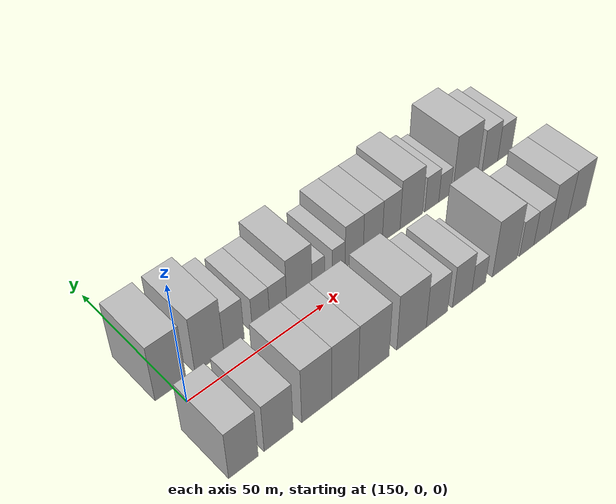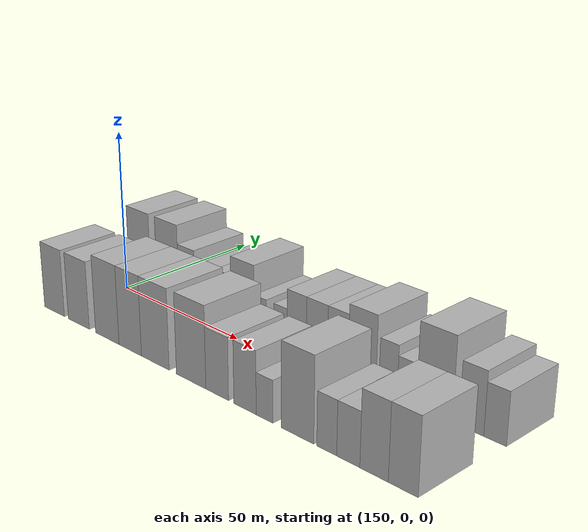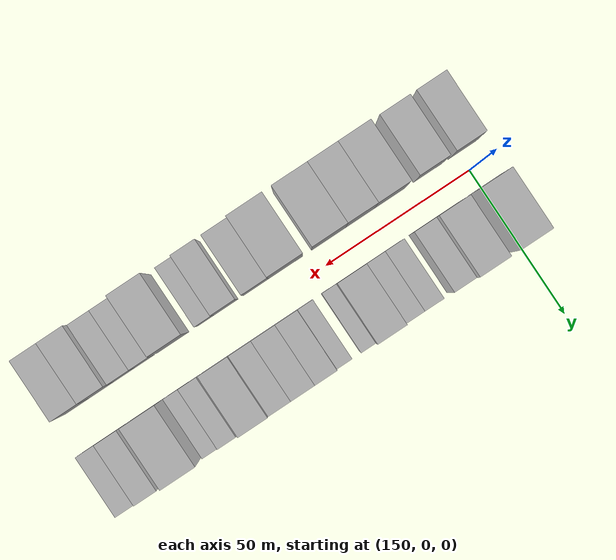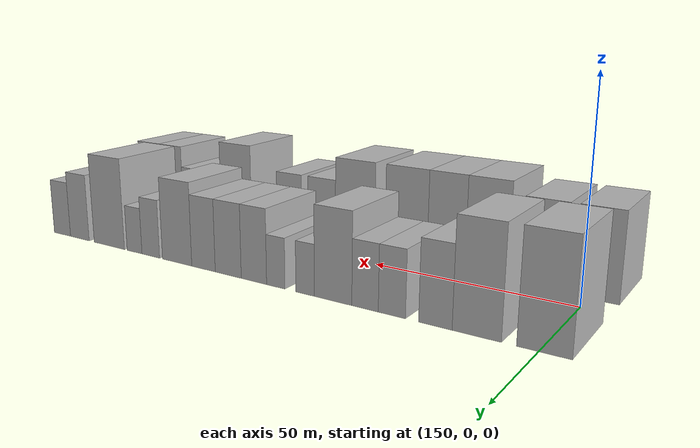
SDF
<sdf version="1.6">
 <world name="default">
  <model name="building_15">
   <static>1</static>
   <pose>149.0754 16.0000 0 0.000000 0.000000 1.570796</pose>
   <link name="link">
    <pose>0 0 12.00 0 0 0</pose>
    <collision name="collision"><geometry><box><size>20.0000 10.6516 24.0000</size></box></geometry></collision>
    <visual name="visual">
     <cast_shadows>0</cast_shadows>
     <geometry><box><size>20.0000 10.6516 24.0000</size></box></geometry>
     <material>
      <script>
       <uri>model://HANNAS_wall/materials/scripts</uri>
       <uri>model://HANNAS_wall/materials/textures</uri>
       <name>vrc/HANNAS_wall</name>
      </script>
     </material>
    </visual>
   </link>
  </model>
  <model name="building_16">
   <static>1</static>
   <pose>162.5421 16.0000 0 0.000000 0.000000 1.570796</pose>
   <link name="link">
    <pose>0 0 12.00 0 0 0</pose>
    <collision name="collision"><geometry><box><size>20.0000 10.2817 24.0000</size></box></geometry></collision>
    <visual name="visual">
     <cast_shadows>0</cast_shadows>
     <geometry><box><size>20.0000 10.2817 24.0000</size></box></geometry>
     <material>
      <script>
       <uri>model://HANNAS_wall/materials/scripts</uri>
       <uri>model://HANNAS_wall/materials/textures</uri>
       <name>vrc/HANNAS_wall</name>
      </script>
     </material>
    </visual>
   </link>
  </model>
  <model name="building_17">
   <static>1</static>
   <pose>171.3868 16.0000 0 0.000000 0.000000 1.570796</pose>
   <link name="link">
    <pose>0 0 9.00 0 0 0</pose>
    <collision name="collision"><geometry><box><size>20.0000 7.4078 18.0000</size></box></geometry></collision>
    <visual name="visual">
     <cast_shadows>0</cast_shadows>
     <geometry><box><size>20.0000 7.4078 18.0000</size></box></geometry>
     <material>
      <script>
       <uri>model://HANNAS_wall/materials/scripts</uri>
       <uri>model://HANNAS_wall/materials/textures</uri>
       <name>vrc/HANNAS_wall</name>
      </script>
     </material>
    </visual>
   </link>
  </model>
  <model name="building_18">
   <static>1</static>
   <pose>181.2997 16.0000 0 0.000000 0.000000 1.570796</pose>
   <link name="link">
    <pose>0 0 7.50 0 0 0</pose>
    <collision name="collision"><geometry><box><size>20.0000 6.4180 15.0000</size></box></geometry></collision>
    <visual name="visual">
     <cast_shadows>0</cast_shadows>
     <geometry><box><size>20.0000 6.4180 15.0000</size></box></geometry>
     <material>
      <script>
       <uri>model://HANNAS_wall/materials/scripts</uri>
       <uri>model://HANNAS_wall/materials/textures</uri>
       <name>vrc/HANNAS_wall</name>
      </script>
     </material>
    </visual>
   </link>
  </model>
  <model name="building_19">
   <static>1</static>
   <pose>187.7610 16.0000 0 0.000000 0.000000 1.570796</pose>
   <link name="link">
    <pose>0 0 7.50 0 0 0</pose>
    <collision name="collision"><geometry><box><size>20.0000 6.5044 15.0000</size></box></geometry></collision>
    <visual name="visual">
     <cast_shadows>0</cast_shadows>
     <geometry><box><size>20.0000 6.5044 15.0000</size></box></geometry>
     <material>
      <script>
       <uri>model://HANNAS_wall/materials/scripts</uri>
       <uri>model://HANNAS_wall/materials/textures</uri>
       <name>vrc/HANNAS_wall</name>
      </script>
     </material>
    </visual>
   </link>
  </model>
  <model name="building_20">
   <static>1</static>
   <pose>195.8750 16.0000 0 0.000000 0.000000 1.570796</pose>
   <link name="link">
    <pose>0 0 10.50 0 0 0</pose>
    <collision name="collision"><geometry><box><size>20.0000 9.7236 21.0000</size></box></geometry></collision>
    <visual name="visual">
     <cast_shadows>0</cast_shadows>
     <geometry><box><size>20.0000 9.7236 21.0000</size></box></geometry>
     <material>
      <script>
       <uri>model://HANNAS_wall/materials/scripts</uri>
       <uri>model://HANNAS_wall/materials/textures</uri>
       <name>vrc/HANNAS_wall</name>
      </script>
     </material>
    </visual>
   </link>
  </model>
  <model name="building_21">
   <static>1</static>
   <pose>203.2164 16.0000 0 0.000000 0.000000 1.570796</pose>
   <link name="link">
    <pose>0 0 6.00 0 0 0</pose>
    <collision name="collision"><geometry><box><size>20.0000 4.9591 12.0000</size></box></geometry></collision>
    <visual name="visual">
     <cast_shadows>0</cast_shadows>
     <geometry><box><size>20.0000 4.9591 12.0000</size></box></geometry>
     <material>
      <script>
       <uri>model://HANNAS_wall/materials/scripts</uri>
       <uri>model://HANNAS_wall/materials/textures</uri>
       <name>vrc/HANNAS_wall</name>
      </script>
     </material>
    </visual>
   </link>
  </model>
  <model name="building_22">
   <static>1</static>
   <pose>211.2967 16.0000 0 0.000000 0.000000 1.570796</pose>
   <link name="link">
    <pose>0 0 6.00 0 0 0</pose>
    <collision name="collision"><geometry><box><size>20.0000 5.2015 12.0000</size></box></geometry></collision>
    <visual name="visual">
     <cast_shadows>0</cast_shadows>
     <geometry><box><size>20.0000 5.2015 12.0000</size></box></geometry>
     <material>
      <script>
       <uri>model://HANNAS_wall/materials/scripts</uri>
       <uri>model://HANNAS_wall/materials/textures</uri>
       <name>vrc/HANNAS_wall</name>
      </script>
     </material>
    </visual>
   </link>
  </model>
  <model name="building_23">
   <static>1</static>
   <pose>217.6205 16.0000 0 0.000000 0.000000 1.570796</pose>
   <link name="link">
    <pose>0 0 9.00 0 0 0</pose>
    <collision name="collision"><geometry><box><size>20.0000 7.4462 18.0000</size></box></geometry></collision>
    <visual name="visual">
     <cast_shadows>0</cast_shadows>
     <geometry><box><size>20.0000 7.4462 18.0000</size></box></geometry>
     <material>
      <script>
       <uri>model://HANNAS_wall/materials/scripts</uri>
       <uri>model://HANNAS_wall/materials/textures</uri>
       <name>vrc/HANNAS_wall</name>
      </script>
     </material>
    </visual>
   </link>
  </model>
  <model name="building_24">
   <static>1</static>
   <pose>225.3362 16.0000 0 0.000000 0.000000 1.570796</pose>
   <link name="link">
    <pose>0 0 9.00 0 0 0</pose>
    <collision name="collision"><geometry><box><size>20.0000 7.9854 18.0000</size></box></geometry></collision>
    <visual name="visual">
     <cast_shadows>0</cast_shadows>
     <geometry><box><size>20.0000 7.9854 18.0000</size></box></geometry>
     <material>
      <script>
       <uri>model://HANNAS_wall/materials/scripts</uri>
       <uri>model://HANNAS_wall/materials/textures</uri>
       <name>vrc/HANNAS_wall</name>
      </script>
     </material>
    </visual>
   </link>
  </model>
  <model name="building_25">
   <static>1</static>
   <pose>233.0954 16.0000 0 0.000000 0.000000 1.570796</pose>
   <link name="link">
    <pose>0 0 9.00 0 0 0</pose>
    <collision name="collision"><geometry><box><size>20.0000 7.5330 18.0000</size></box></geometry></collision>
    <visual name="visual">
     <cast_shadows>0</cast_shadows>
     <geometry><box><size>20.0000 7.5330 18.0000</size></box></geometry>
     <material>
      <script>
       <uri>model://HANNAS_wall/materials/scripts</uri>
       <uri>model://HANNAS_wall/materials/textures</uri>
       <name>vrc/HANNAS_wall</name>
      </script>
     </material>
    </visual>
   </link>
  </model>
  <model name="building_26">
   <static>1</static>
   <pose>241.7802 16.0000 0 0.000000 0.000000 1.570796</pose>
   <link name="link">
    <pose>0 0 10.50 0 0 0</pose>
    <collision name="collision"><geometry><box><size>20.0000 9.8365 21.0000</size></box></geometry></collision>
    <visual name="visual">
     <cast_shadows>0</cast_shadows>
     <geometry><box><size>20.0000 9.8365 21.0000</size></box></geometry>
     <material>
      <script>
       <uri>model://HANNAS_wall/materials/scripts</uri>
       <uri>model://HANNAS_wall/materials/textures</uri>
       <name>vrc/HANNAS_wall</name>
      </script>
     </material>
    </visual>
   </link>
  </model>
  <model name="building_27">
   <static>1</static>
   <pose>250.8081 16.0000 0 0.000000 0.000000 1.570796</pose>
   <link name="link">
    <pose>0 0 7.50 0 0 0</pose>
    <collision name="collision"><geometry><box><size>20.0000 6.2193 15.0000</size></box></geometry></collision>
    <visual name="visual">
     <cast_shadows>0</cast_shadows>
     <geometry><box><size>20.0000 6.2193 15.0000</size></box></geometry>
     <material>
      <script>
       <uri>model://HANNAS_wall/materials/scripts</uri>
       <uri>model://HANNAS_wall/materials/textures</uri>
       <name>vrc/HANNAS_wall</name>
      </script>
     </material>
    </visual>
   </link>
  </model>
  <model name="building_28">
   <static>1</static>
   <pose>256.6088 16.0000 0 0.000000 0.000000 1.570796</pose>
   <link name="link">
    <pose>0 0 6.00 0 0 0</pose>
    <collision name="collision"><geometry><box><size>20.0000 5.3822 12.0000</size></box></geometry></collision>
    <visual name="visual">
     <cast_shadows>0</cast_shadows>
     <geometry><box><size>20.0000 5.3822 12.0000</size></box></geometry>
     <material>
      <script>
       <uri>model://HANNAS_wall/materials/scripts</uri>
       <uri>model://HANNAS_wall/materials/textures</uri>
       <name>vrc/HANNAS_wall</name>
      </script>
     </material>
    </visual>
   </link>
  </model>
  <model name="building_29">
   <static>1</static>
   <pose>266.0552 16.0000 0 0.000000 0.000000 1.570796</pose>
   <link name="link">
    <pose>0 0 12.00 0 0 0</pose>
    <collision name="collision"><geometry><box><size>20.0000 11.5105 24.0000</size></box></geometry></collision>
    <visual name="visual">
     <cast_shadows>0</cast_shadows>
     <geometry><box><size>20.0000 11.5105 24.0000</size></box></geometry>
     <material>
      <script>
       <uri>model://HANNAS_wall/materials/scripts</uri>
       <uri>model://HANNAS_wall/materials/textures</uri>
       <name>vrc/HANNAS_wall</name>
      </script>
     </material>
    </visual>
   </link>
  </model>
  <model name="building_30">
   <static>1</static>
   <pose>277.5711 16.0000 0 0.000000 0.000000 1.570796</pose>
   <link name="link">
    <pose>0 0 9.00 0 0 0</pose>
    <collision name="collision"><geometry><box><size>20.0000 7.5214 18.0000</size></box></geometry></collision>
    <visual name="visual">
     <cast_shadows>0</cast_shadows>
     <geometry><box><size>20.0000 7.5214 18.0000</size></box></geometry>
     <material>
      <script>
       <uri>model://HANNAS_wall/materials/scripts</uri>
       <uri>model://HANNAS_wall/materials/textures</uri>
       <name>vrc/HANNAS_wall</name>
      </script>
     </material>
    </visual>
   </link>
  </model>
  <model name="building_31">
   <static>1</static>
   <pose>284.6856 16.0000 0 0.000000 0.000000 1.570796</pose>
   <link name="link">
    <pose>0 0 7.50 0 0 0</pose>
    <collision name="collision"><geometry><box><size>20.0000 6.7074 15.0000</size></box></geometry></collision>
    <visual name="visual">
     <cast_shadows>0</cast_shadows>
     <geometry><box><size>20.0000 6.7074 15.0000</size></box></geometry>
     <material>
      <script>
       <uri>model://HANNAS_wall/materials/scripts</uri>
       <uri>model://HANNAS_wall/materials/textures</uri>
       <name>vrc/HANNAS_wall</name>
      </script>
     </material>
    </visual>
   </link>
  </model>
  <model name="building_46">
   <static>1</static>
   <pose>148.4715 -16.0000 0 0.000000 0.000000 1.570796</pose>
   <link name="link">
    <pose>0 0 10.50 0 0 0</pose>
    <collision name="collision"><geometry><box><size>20.0000 9.9262 21.0000</size></box></geometry></collision>
    <visual name="visual">
     <cast_shadows>0</cast_shadows>
     <geometry><box><size>20.0000 9.9262 21.0000</size></box></geometry>
     <material>
      <script>
       <uri>model://HANNAS_wall/materials/scripts</uri>
       <uri>model://HANNAS_wall/materials/textures</uri>
       <name>vrc/HANNAS_wall</name>
      </script>
     </material>
    </visual>
   </link>
  </model>
  <model name="building_47">
   <static>1</static>
   <pose>160.4855 -16.0000 0 0.000000 0.000000 1.570796</pose>
   <link name="link">
    <pose>0 0 10.50 0 0 0</pose>
    <collision name="collision"><geometry><box><size>20.0000 10.1018 21.0000</size></box></geometry></collision>
    <visual name="visual">
     <cast_shadows>0</cast_shadows>
     <geometry><box><size>20.0000 10.1018 21.0000</size></box></geometry>
     <material>
      <script>
       <uri>model://HANNAS_wall/materials/scripts</uri>
       <uri>model://HANNAS_wall/materials/textures</uri>
       <name>vrc/HANNAS_wall</name>
      </script>
     </material>
    </visual>
   </link>
  </model>
  <model name="building_48">
   <static>1</static>
   <pose>173.9214 -16.0000 0 0.000000 0.000000 1.570796</pose>
   <link name="link">
    <pose>0 0 12.00 0 0 0</pose>
    <collision name="collision"><geometry><box><size>20.0000 10.7699 24.0000</size></box></geometry></collision>
    <visual name="visual">
     <cast_shadows>0</cast_shadows>
     <geometry><box><size>20.0000 10.7699 24.0000</size></box></geometry>
     <material>
      <script>
       <uri>model://HANNAS_wall/materials/scripts</uri>
       <uri>model://HANNAS_wall/materials/textures</uri>
       <name>vrc/HANNAS_wall</name>
      </script>
     </material>
    </visual>
   </link>
  </model>
  <model name="building_49">
   <static>1</static>
   <pose>184.2970 -16.0000 0 0.000000 0.000000 1.570796</pose>
   <link name="link">
    <pose>0 0 12.00 0 0 0</pose>
    <collision name="collision"><geometry><box><size>20.0000 9.9814 24.0000</size></box></geometry></collision>
    <visual name="visual">
     <cast_shadows>0</cast_shadows>
     <geometry><box><size>20.0000 9.9814 24.0000</size></box></geometry>
     <material>
      <script>
       <uri>model://HANNAS_wall/materials/scripts</uri>
       <uri>model://HANNAS_wall/materials/textures</uri>
       <name>vrc/HANNAS_wall</name>
      </script>
     </material>
    </visual>
   </link>
  </model>
  <model name="building_50">
   <static>1</static>
   <pose>195.1670 -16.0000 0 0.000000 0.000000 1.570796</pose>
   <link name="link">
    <pose>0 0 12.00 0 0 0</pose>
    <collision name="collision"><geometry><box><size>20.0000 11.7585 24.0000</size></box></geometry></collision>
    <visual name="visual">
     <cast_shadows>0</cast_shadows>
     <geometry><box><size>20.0000 11.7585 24.0000</size></box></geometry>
     <material>
      <script>
       <uri>model://HANNAS_wall/materials/scripts</uri>
       <uri>model://HANNAS_wall/materials/textures</uri>
       <name>vrc/HANNAS_wall</name>
      </script>
     </material>
    </visual>
   </link>
  </model>
  <model name="building_51">
   <static>1</static>
   <pose>209.9599 -16.0000 0 0.000000 0.000000 1.570796</pose>
   <link name="link">
    <pose>0 0 12.00 0 0 0</pose>
    <collision name="collision"><geometry><box><size>20.0000 11.8273 24.0000</size></box></geometry></collision>
    <visual name="visual">
     <cast_shadows>0</cast_shadows>
     <geometry><box><size>20.0000 11.8273 24.0000</size></box></geometry>
     <material>
      <script>
       <uri>model://HANNAS_wall/materials/scripts</uri>
       <uri>model://HANNAS_wall/materials/textures</uri>
       <name>vrc/HANNAS_wall</name>
      </script>
     </material>
    </visual>
   </link>
  </model>
  <model name="building_52">
   <static>1</static>
   <pose>220.2306 -16.0000 0 0.000000 0.000000 1.570796</pose>
   <link name="link">
    <pose>0 0 9.00 0 0 0</pose>
    <collision name="collision"><geometry><box><size>20.0000 8.7141 18.0000</size></box></geometry></collision>
    <visual name="visual">
     <cast_shadows>0</cast_shadows>
     <geometry><box><size>20.0000 8.7141 18.0000</size></box></geometry>
     <material>
      <script>
       <uri>model://HANNAS_wall/materials/scripts</uri>
       <uri>model://HANNAS_wall/materials/textures</uri>
       <name>vrc/HANNAS_wall</name>
      </script>
     </material>
    </visual>
   </link>
  </model>
  <model name="building_53">
   <static>1</static>
   <pose>230.6969 -16.0000 0 0.000000 0.000000 1.570796</pose>
   <link name="link">
    <pose>0 0 9.00 0 0 0</pose>
    <collision name="collision"><geometry><box><size>20.0000 8.2186 18.0000</size></box></geometry></collision>
    <visual name="visual">
     <cast_shadows>0</cast_shadows>
     <geometry><box><size>20.0000 8.2186 18.0000</size></box></geometry>
     <material>
      <script>
       <uri>model://HANNAS_wall/materials/scripts</uri>
       <uri>model://HANNAS_wall/materials/textures</uri>
       <name>vrc/HANNAS_wall</name>
      </script>
     </material>
    </visual>
   </link>
  </model>
  <model name="building_54">
   <static>1</static>
   <pose>237.7744 -16.0000 0 0.000000 0.000000 1.570796</pose>
   <link name="link">
    <pose>0 0 6.00 0 0 0</pose>
    <collision name="collision"><geometry><box><size>20.0000 5.9365 12.0000</size></box></geometry></collision>
    <visual name="visual">
     <cast_shadows>0</cast_shadows>
     <geometry><box><size>20.0000 5.9365 12.0000</size></box></geometry>
     <material>
      <script>
       <uri>model://HANNAS_wall/materials/scripts</uri>
       <uri>model://HANNAS_wall/materials/textures</uri>
       <name>vrc/HANNAS_wall</name>
      </script>
     </material>
    </visual>
   </link>
  </model>
  <model name="building_55">
   <static>1</static>
   <pose>249.2612 -16.0000 0 0.000000 0.000000 1.570796</pose>
   <link name="link">
    <pose>0 0 12.00 0 0 0</pose>
    <collision name="collision"><geometry><box><size>20.0000 11.0372 24.0000</size></box></geometry></collision>
    <visual name="visual">
     <cast_shadows>0</cast_shadows>
     <geometry><box><size>20.0000 11.0372 24.0000</size></box></geometry>
     <material>
      <script>
       <uri>model://HANNAS_wall/materials/scripts</uri>
       <uri>model://HANNAS_wall/materials/textures</uri>
       <name>vrc/HANNAS_wall</name>
      </script>
     </material>
    </visual>
   </link>
  </model>
  <model name="building_56">
   <static>1</static>
   <pose>259.0201 -16.0000 0 0.000000 0.000000 1.570796</pose>
   <link name="link">
    <pose>0 0 7.50 0 0 0</pose>
    <collision name="collision"><geometry><box><size>20.0000 6.4806 15.0000</size></box></geometry></collision>
    <visual name="visual">
     <cast_shadows>0</cast_shadows>
     <geometry><box><size>20.0000 6.4806 15.0000</size></box></geometry>
     <material>
      <script>
       <uri>model://HANNAS_wall/materials/scripts</uri>
       <uri>model://HANNAS_wall/materials/textures</uri>
       <name>vrc/HANNAS_wall</name>
      </script>
     </material>
    </visual>
   </link>
  </model>
  <model name="building_57">
   <static>1</static>
   <pose>265.9288 -16.0000 0 0.000000 0.000000 1.570796</pose>
   <link name="link">
    <pose>0 0 7.50 0 0 0</pose>
    <collision name="collision"><geometry><box><size>20.0000 7.3367 15.0000</size></box></geometry></collision>
    <visual name="visual">
     <cast_shadows>0</cast_shadows>
     <geometry><box><size>20.0000 7.3367 15.0000</size></box></geometry>
     <material>
      <script>
       <uri>model://HANNAS_wall/materials/scripts</uri>
       <uri>model://HANNAS_wall/materials/textures</uri>
       <name>vrc/HANNAS_wall</name>
      </script>
     </material>
    </visual>
   </link>
  </model>
  <model name="building_58">
   <static>1</static>
   <pose>273.9417 -16.0000 0 0.000000 0.000000 1.570796</pose>
   <link name="link">
    <pose>0 0 10.50 0 0 0</pose>
    <collision name="collision"><geometry><box><size>20.0000 8.6891 21.0000</size></box></geometry></collision>
    <visual name="visual">
     <cast_shadows>0</cast_shadows>
     <geometry><box><size>20.0000 8.6891 21.0000</size></box></geometry>
     <material>
      <script>
       <uri>model://HANNAS_wall/materials/scripts</uri>
       <uri>model://HANNAS_wall/materials/textures</uri>
       <name>vrc/HANNAS_wall</name>
      </script>
     </material>
    </visual>
   </link>
  </model>
  <model name="building_59">
   <static>1</static>
   <pose>282.6593 -16.0000 0 0.000000 0.000000 1.570796</pose>
   <link name="link">
    <pose>0 0 10.50 0 0 0</pose>
    <collision name="collision"><geometry><box><size>20.0000 8.7461 21.0000</size></box></geometry></collision>
    <visual name="visual">
     <cast_shadows>0</cast_shadows>
     <geometry><box><size>20.0000 8.7461 21.0000</size></box></geometry>
     <material>
      <script>
       <uri>model://HANNAS_wall/materials/scripts</uri>
       <uri>model://HANNAS_wall/materials/textures</uri>
       <name>vrc/HANNAS_wall</name>
      </script>
     </material>
    </visual>
   </link>
  </model>
 </world>
</sdf>
